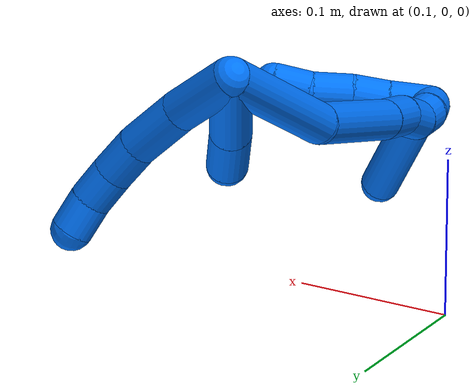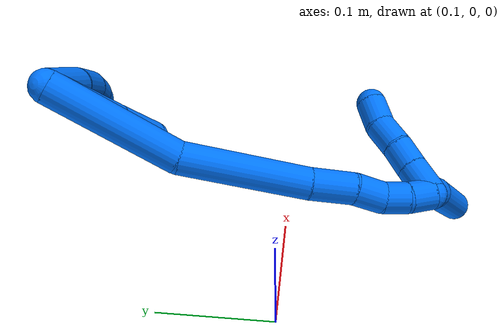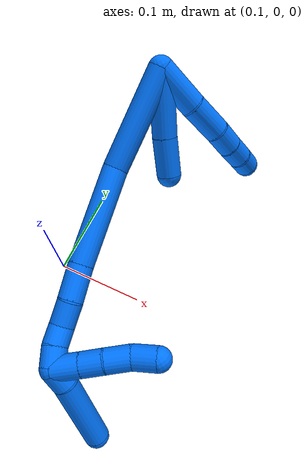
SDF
<sdf version="1.7">
 <world name="default">
  <model name="14">
   <static>0</static>
   <link name="14">
    <collision name="collision-cylinder-e_1_2_8">
     <pose>-0.000654 0.007675 0.021201 -0.347329 -0.028982 0.005085</pose>
     <geometry><cylinder><radius>0.0125</radius><length>0.045113</length></cylinder></geometry>
     <surface>
      <friction><ode><mu>1.16</mu><mu2>1.16</mu2><slip1>0</slip1><slip2>0</slip2></ode></friction>
      <contact><ode><kp>1e+06</kp><kd>1</kd><max_vel>0</max_vel><min_depth>0.001</min_depth></ode></contact>
     </surface>
    </collision>
    <visual name="visual-cylinder-e_1_2_8">
     <pose>-0.000654 0.007675 0.021201 -0.347329 -0.028982 0.005085</pose>
     <geometry><cylinder><radius>0.0125</radius><length>0.045113</length></cylinder></geometry>
     <material><ambient>0 0.462745 1 1</ambient></material>
    </visual>
    <collision name="collision-cylinder-e_2_8_9">
     <pose>0.000801 0.022827 0.059237 -0.417964 0.113975 -0.024197</pose>
     <geometry><cylinder><radius>0.0125</radius><length>0.037084</length></cylinder></geometry>
     <surface>
      <friction><ode><mu>1.16</mu><mu2>1.16</mu2><slip1>0</slip1><slip2>0</slip2></ode></friction>
      <contact><ode><kp>1e+06</kp><kd>1</kd><max_vel>0</max_vel><min_depth>0.001</min_depth></ode></contact>
     </surface>
    </collision>
    <visual name="visual-cylinder-e_2_8_9">
     <pose>0.000801 0.022827 0.059237 -0.417964 0.113975 -0.024197</pose>
     <geometry><cylinder><radius>0.0125</radius><length>0.037084</length></cylinder></geometry>
     <material><ambient>0 0.462745 1 1</ambient></material>
    </visual>
    <collision name="collision-cylinder-e_3_9_10">
     <pose>0.006165 0.035002 0.086782 -0.413385 0.271436 -0.057253</pose>
     <geometry><cylinder><radius>0.0125</radius><length>0.024277</length></cylinder></geometry>
     <surface>
      <friction><ode><mu>1.16</mu><mu2>1.16</mu2><slip1>0</slip1><slip2>0</slip2></ode></friction>
      <contact><ode><kp>1e+06</kp><kd>1</kd><max_vel>0</max_vel><min_depth>0.001</min_depth></ode></contact>
     </surface>
    </collision>
    <visual name="visual-cylinder-e_3_9_10">
     <pose>0.006165 0.035002 0.086782 -0.413385 0.271436 -0.057253</pose>
     <geometry><cylinder><radius>0.0125</radius><length>0.024277</length></cylinder></geometry>
     <material><ambient>0 0.462745 1 1</ambient></material>
    </visual>
    <collision name="collision-cylinder-e_4_10_11">
     <pose>0.013311 0.044351 0.106688 -0.468266 0.361088 -0.087015</pose>
     <geometry><cylinder><radius>0.0125</radius><length>0.022035</length></cylinder></geometry>
     <surface>
      <friction><ode><mu>1.16</mu><mu2>1.16</mu2><slip1>0</slip1><slip2>0</slip2></ode></friction>
      <contact><ode><kp>1e+06</kp><kd>1</kd><max_vel>0</max_vel><min_depth>0.001</min_depth></ode></contact>
     </surface>
    </collision>
    <visual name="visual-cylinder-e_4_10_11">
     <pose>0.013311 0.044351 0.106688 -0.468266 0.361088 -0.087015</pose>
     <geometry><cylinder><radius>0.0125</radius><length>0.022035</length></cylinder></geometry>
     <material><ambient>0 0.462745 1 1</ambient></material>
    </visual>
    <collision name="collision-cylinder-e_5_11_6">
     <pose>0.022774 0.053521 0.123888 -0.513934 0.544954 -0.14659</pose>
     <geometry><cylinder><radius>0.0125</radius><length>0.021491</length></cylinder></geometry>
     <surface>
      <friction><ode><mu>1.16</mu><mu2>1.16</mu2><slip1>0</slip1><slip2>0</slip2></ode></friction>
      <contact><ode><kp>1e+06</kp><kd>1</kd><max_vel>0</max_vel><min_depth>0.001</min_depth></ode></contact>
     </surface>
    </collision>
    <visual name="visual-cylinder-e_5_11_6">
     <pose>0.022774 0.053521 0.123888 -0.513934 0.544954 -0.14659</pose>
     <geometry><cylinder><radius>0.0125</radius><length>0.021491</length></cylinder></geometry>
     <material><ambient>0 0.462745 1 1</ambient></material>
    </visual>
    <collision name="collision-cylinder-e_1_2_12">
     <pose>0.003555 -0.010243 0.028762 0.342141 0.115922 0.020048</pose>
     <geometry><cylinder><radius>0.0125</radius><length>0.061475</length></cylinder></geometry>
     <surface>
      <friction><ode><mu>1.16</mu><mu2>1.16</mu2><slip1>0</slip1><slip2>0</slip2></ode></friction>
      <contact><ode><kp>1e+06</kp><kd>1</kd><max_vel>0</max_vel><min_depth>0.001</min_depth></ode></contact>
     </surface>
    </collision>
    <visual name="visual-cylinder-e_1_2_12">
     <pose>0.003555 -0.010243 0.028762 0.342141 0.115922 0.020048</pose>
     <geometry><cylinder><radius>0.0125</radius><length>0.061475</length></cylinder></geometry>
     <material><ambient>0 0.462745 1 1</ambient></material>
    </visual>
    <collision name="collision-cylinder-e_2_12_5">
     <pose>0.009148 -0.025907 0.075895 0.286898 0.10598 0.015322</pose>
     <geometry><cylinder><radius>0.0125</radius><length>0.038525</length></cylinder></geometry>
     <surface>
      <friction><ode><mu>1.16</mu><mu2>1.16</mu2><slip1>0</slip1><slip2>0</slip2></ode></friction>
      <contact><ode><kp>1e+06</kp><kd>1</kd><max_vel>0</max_vel><min_depth>0.001</min_depth></ode></contact>
     </surface>
    </collision>
    <visual name="visual-cylinder-e_2_12_5">
     <pose>0.009148 -0.025907 0.075895 0.286898 0.10598 0.015322</pose>
     <geometry><cylinder><radius>0.0125</radius><length>0.038525</length></cylinder></geometry>
     <material><ambient>0 0.462745 1 1</ambient></material>
    </visual>
    <collision name="collision-cylinder-e_1_2_13">
     <pose>0.001833 -0.039683 0.03062 0.913604 0.036558 0.017969</pose>
     <geometry><cylinder><radius>0.0125</radius><length>0.100312</length></cylinder></geometry>
     <surface>
      <friction><ode><mu>1.16</mu><mu2>1.16</mu2><slip1>0</slip1><slip2>0</slip2></ode></friction>
      <contact><ode><kp>1e+06</kp><kd>1</kd><max_vel>0</max_vel><min_depth>0.001</min_depth></ode></contact>
     </surface>
    </collision>
    <visual name="visual-cylinder-e_1_2_13">
     <pose>0.001833 -0.039683 0.03062 0.913604 0.036558 0.017969</pose>
     <geometry><cylinder><radius>0.0125</radius><length>0.100312</length></cylinder></geometry>
     <material><ambient>0 0.462745 1 1</ambient></material>
    </visual>
    <collision name="collision-cylinder-e_2_13_14">
     <pose>-0.009633 -0.116727 0.090693 0.903209 -0.272591 -0.132845</pose>
     <geometry><cylinder><radius>0.0125</radius><length>0.098799</length></cylinder></geometry>
     <surface>
      <friction><ode><mu>1.16</mu><mu2>1.16</mu2><slip1>0</slip1><slip2>0</slip2></ode></friction>
      <contact><ode><kp>1e+06</kp><kd>1</kd><max_vel>0</max_vel><min_depth>0.001</min_depth></ode></contact>
     </surface>
    </collision>
    <visual name="visual-cylinder-e_2_13_14">
     <pose>-0.009633 -0.116727 0.090693 0.903209 -0.272591 -0.132845</pose>
     <geometry><cylinder><radius>0.0125</radius><length>0.098799</length></cylinder></geometry>
     <material><ambient>0 0.462745 1 1</ambient></material>
    </visual>
    <collision name="collision-cylinder-e_3_14_15">
     <pose>-0.028912 -0.16672 0.130961 0.862738 -0.345189 -0.160137</pose>
     <geometry><cylinder><radius>0.0125</radius><length>0.035342</length></cylinder></geometry>
     <surface>
      <friction><ode><mu>1.16</mu><mu2>1.16</mu2><slip1>0</slip1><slip2>0</slip2></ode></friction>
      <contact><ode><kp>1e+06</kp><kd>1</kd><max_vel>0</max_vel><min_depth>0.001</min_depth></ode></contact>
     </surface>
    </collision>
    <visual name="visual-cylinder-e_3_14_15">
     <pose>-0.028912 -0.16672 0.130961 0.862738 -0.345189 -0.160137</pose>
     <geometry><cylinder><radius>0.0125</radius><length>0.035342</length></cylinder></geometry>
     <material><ambient>0 0.462745 1 1</ambient></material>
    </visual>
    <collision name="collision-cylinder-e_4_15_16">
     <pose>-0.036803 -0.188669 0.149926 0.852063 -0.153152 -0.069613</pose>
     <geometry><cylinder><radius>0.0125</radius><length>0.025051</length></cylinder></geometry>
     <surface>
      <friction><ode><mu>1.16</mu><mu2>1.16</mu2><slip1>0</slip1><slip2>0</slip2></ode></friction>
      <contact><ode><kp>1e+06</kp><kd>1</kd><max_vel>0</max_vel><min_depth>0.001</min_depth></ode></contact>
     </surface>
    </collision>
    <visual name="visual-cylinder-e_4_15_16">
     <pose>-0.036803 -0.188669 0.149926 0.852063 -0.153152 -0.069613</pose>
     <geometry><cylinder><radius>0.0125</radius><length>0.025051</length></cylinder></geometry>
     <material><ambient>0 0.462745 1 1</ambient></material>
    </visual>
    <collision name="collision-cylinder-e_5_16_17">
     <pose>-0.04334 -0.205196 0.163242 0.949234 -0.480768 -0.250564</pose>
     <geometry><cylinder><radius>0.0125</radius><length>0.020007</length></cylinder></geometry>
     <surface>
      <friction><ode><mu>1.16</mu><mu2>1.16</mu2><slip1>0</slip1><slip2>0</slip2></ode></friction>
      <contact><ode><kp>1e+06</kp><kd>1</kd><max_vel>0</max_vel><min_depth>0.001</min_depth></ode></contact>
     </surface>
    </collision>
    <visual name="visual-cylinder-e_5_16_17">
     <pose>-0.04334 -0.205196 0.163242 0.949234 -0.480768 -0.250564</pose>
     <geometry><cylinder><radius>0.0125</radius><length>0.020007</length></cylinder></geometry>
     <material><ambient>0 0.462745 1 1</ambient></material>
    </visual>
    <collision name="collision-cylinder-e_6_17_1">
     <pose>-0.053373 -0.217977 0.175092 0.694632 -0.555997 -0.205885</pose>
     <geometry><cylinder><radius>0.0125</radius><length>0.020489</length></cylinder></geometry>
     <surface>
      <friction><ode><mu>1.16</mu><mu2>1.16</mu2><slip1>0</slip1><slip2>0</slip2></ode></friction>
      <contact><ode><kp>1e+06</kp><kd>1</kd><max_vel>0</max_vel><min_depth>0.001</min_depth></ode></contact>
     </surface>
    </collision>
    <visual name="visual-cylinder-e_6_17_1">
     <pose>-0.053373 -0.217977 0.175092 0.694632 -0.555997 -0.205885</pose>
     <geometry><cylinder><radius>0.0125</radius><length>0.020489</length></cylinder></geometry>
     <material><ambient>0 0.462745 1 1</ambient></material>
    </visual>
    <collision name="collision-cylinder-e_1_1_18">
     <pose>-0.063118 -0.211084 0.185147 -1.30666 -0.324204 0.249071</pose>
     <geometry><cylinder><radius>0.0125</radius><length>0.027239</length></cylinder></geometry>
     <surface>
      <friction><ode><mu>1.16</mu><mu2>1.16</mu2><slip1>0</slip1><slip2>0</slip2></ode></friction>
      <contact><ode><kp>1e+06</kp><kd>1</kd><max_vel>0</max_vel><min_depth>0.001</min_depth></ode></contact>
     </surface>
    </collision>
    <visual name="visual-cylinder-e_1_1_18">
     <pose>-0.063118 -0.211084 0.185147 -1.30666 -0.324204 0.249071</pose>
     <geometry><cylinder><radius>0.0125</radius><length>0.027239</length></cylinder></geometry>
     <material><ambient>0 0.462745 1 1</ambient></material>
    </visual>
    <collision name="collision-cylinder-e_2_18_19">
     <pose>-0.071492 -0.188221 0.190803 -1.35452 -0.362165 0.292356</pose>
     <geometry><cylinder><radius>0.0125</radius><length>0.022776</length></cylinder></geometry>
     <surface>
      <friction><ode><mu>1.16</mu><mu2>1.16</mu2><slip1>0</slip1><slip2>0</slip2></ode></friction>
      <contact><ode><kp>1e+06</kp><kd>1</kd><max_vel>0</max_vel><min_depth>0.001</min_depth></ode></contact>
     </surface>
    </collision>
    <visual name="visual-cylinder-e_2_18_19">
     <pose>-0.071492 -0.188221 0.190803 -1.35452 -0.362165 0.292356</pose>
     <geometry><cylinder><radius>0.0125</radius><length>0.022776</length></cylinder></geometry>
     <material><ambient>0 0.462745 1 1</ambient></material>
    </visual>
    <collision name="collision-cylinder-e_3_19_20">
     <pose>-0.07882 -0.166096 0.196637 -1.2769 -0.262697 0.195461</pose>
     <geometry><cylinder><radius>0.0125</radius><length>0.025368</length></cylinder></geometry>
     <surface>
      <friction><ode><mu>1.16</mu><mu2>1.16</mu2><slip1>0</slip1><slip2>0</slip2></ode></friction>
      <contact><ode><kp>1e+06</kp><kd>1</kd><max_vel>0</max_vel><min_depth>0.001</min_depth></ode></contact>
     </surface>
    </collision>
    <visual name="visual-cylinder-e_3_19_20">
     <pose>-0.07882 -0.166096 0.196637 -1.2769 -0.262697 0.195461</pose>
     <geometry><cylinder><radius>0.0125</radius><length>0.025368</length></cylinder></geometry>
     <material><ambient>0 0.462745 1 1</ambient></material>
    </visual>
    <collision name="collision-cylinder-e_4_20_4">
     <pose>-0.088055 -0.144458 0.204417 -1.16738 -0.503743 0.336702</pose>
     <geometry><cylinder><radius>0.0125</radius><length>0.024616</length></cylinder></geometry>
     <surface>
      <friction><ode><mu>1.16</mu><mu2>1.16</mu2><slip1>0</slip1><slip2>0</slip2></ode></friction>
      <contact><ode><kp>1e+06</kp><kd>1</kd><max_vel>0</max_vel><min_depth>0.001</min_depth></ode></contact>
     </surface>
    </collision>
    <visual name="visual-cylinder-e_4_20_4">
     <pose>-0.088055 -0.144458 0.204417 -1.16738 -0.503743 0.336702</pose>
     <geometry><cylinder><radius>0.0125</radius><length>0.024616</length></cylinder></geometry>
     <material><ambient>0 0.462745 1 1</ambient></material>
    </visual>
    <collision name="collision-cylinder-e_1_1_21">
     <pose>-0.059078 -0.222763 0.192088 -0.075842 -0.028878 0.001096</pose>
     <geometry><cylinder><radius>0.0125</radius><length>0.02069</length></cylinder></geometry>
     <surface>
      <friction><ode><mu>1.16</mu><mu2>1.16</mu2><slip1>0</slip1><slip2>0</slip2></ode></friction>
      <contact><ode><kp>1e+06</kp><kd>1</kd><max_vel>0</max_vel><min_depth>0.001</min_depth></ode></contact>
     </surface>
    </collision>
    <visual name="visual-cylinder-e_1_1_21">
     <pose>-0.059078 -0.222763 0.192088 -0.075842 -0.028878 0.001096</pose>
     <geometry><cylinder><radius>0.0125</radius><length>0.02069</length></cylinder></geometry>
     <material><ambient>0 0.462745 1 1</ambient></material>
    </visual>
    <collision name="collision-cylinder-e_2_21_3">
     <pose>-0.055344 -0.225393 0.241701 0.08663 0.101878 0.004419</pose>
     <geometry><cylinder><radius>0.0125</radius><length>0.07931</length></cylinder></geometry>
     <surface>
      <friction><ode><mu>1.16</mu><mu2>1.16</mu2><slip1>0</slip1><slip2>0</slip2></ode></friction>
      <contact><ode><kp>1e+06</kp><kd>1</kd><max_vel>0</max_vel><min_depth>0.001</min_depth></ode></contact>
     </surface>
    </collision>
    <visual name="visual-cylinder-e_2_21_3">
     <pose>-0.055344 -0.225393 0.241701 0.08663 0.101878 0.004419</pose>
     <geometry><cylinder><radius>0.0125</radius><length>0.07931</length></cylinder></geometry>
     <material><ambient>0 0.462745 1 1</ambient></material>
    </visual>
    <collision name="collision-sphere-3">
     <pose>-0.051311 -0.228806 0.281002 0 -0 0</pose>
     <geometry><sphere><radius>0.0125</radius></sphere></geometry>
     <surface>
      <friction><ode><mu>1.16</mu><mu2>1.16</mu2><slip1>0</slip1><slip2>0</slip2></ode></friction>
      <contact><ode><kp>1e+06</kp><kd>1</kd><max_vel>0</max_vel><min_depth>0.001</min_depth></ode></contact>
     </surface>
    </collision>
    <visual name="visual-sphere-3">
     <pose>-0.051311 -0.228806 0.281002 0 -0 0</pose>
     <geometry><sphere><radius>0.0125</radius></sphere></geometry>
     <material><ambient>0 0.462745 1 1</ambient></material>
    </visual>
    <collision name="collision-sphere-21">
     <pose>-0.059377 -0.221979 0.202399 0 -0 0</pose>
     <geometry><sphere><radius>0.0125</radius></sphere></geometry>
     <surface>
      <friction><ode><mu>1.16</mu><mu2>1.16</mu2><slip1>0</slip1><slip2>0</slip2></ode></friction>
      <contact><ode><kp>1e+06</kp><kd>1</kd><max_vel>0</max_vel><min_depth>0.001</min_depth></ode></contact>
     </surface>
    </collision>
    <visual name="visual-sphere-21">
     <pose>-0.059377 -0.221979 0.202399 0 -0 0</pose>
     <geometry><sphere><radius>0.0125</radius></sphere></geometry>
     <material><ambient>0 0.462745 1 1</ambient></material>
    </visual>
    <collision name="collision-sphere-4">
     <pose>-0.093997 -0.134544 0.208648 0 -0 0</pose>
     <geometry><sphere><radius>0.0125</radius></sphere></geometry>
     <surface>
      <friction><ode><mu>1.16</mu><mu2>1.16</mu2><slip1>0</slip1><slip2>0</slip2></ode></friction>
      <contact><ode><kp>1e+06</kp><kd>1</kd><max_vel>0</max_vel><min_depth>0.001</min_depth></ode></contact>
     </surface>
    </collision>
    <visual name="visual-sphere-4">
     <pose>-0.093997 -0.134544 0.208648 0 -0 0</pose>
     <geometry><sphere><radius>0.0125</radius></sphere></geometry>
     <material><ambient>0 0.462745 1 1</ambient></material>
    </visual>
    <collision name="collision-sphere-20">
     <pose>-0.082114 -0.154372 0.200185 0 -0 0</pose>
     <geometry><sphere><radius>0.0125</radius></sphere></geometry>
     <surface>
      <friction><ode><mu>1.16</mu><mu2>1.16</mu2><slip1>0</slip1><slip2>0</slip2></ode></friction>
      <contact><ode><kp>1e+06</kp><kd>1</kd><max_vel>0</max_vel><min_depth>0.001</min_depth></ode></contact>
     </surface>
    </collision>
    <visual name="visual-sphere-20">
     <pose>-0.082114 -0.154372 0.200185 0 -0 0</pose>
     <geometry><sphere><radius>0.0125</radius></sphere></geometry>
     <material><ambient>0 0.462745 1 1</ambient></material>
    </visual>
    <collision name="collision-sphere-6">
     <pose>0.028345 0.058038 0.13189 0 -0 0</pose>
     <geometry><sphere><radius>0.0125</radius></sphere></geometry>
     <surface>
      <friction><ode><mu>1.16</mu><mu2>1.16</mu2><slip1>0</slip1><slip2>0</slip2></ode></friction>
      <contact><ode><kp>1e+06</kp><kd>1</kd><max_vel>0</max_vel><min_depth>0.001</min_depth></ode></contact>
     </surface>
    </collision>
    <visual name="visual-sphere-6">
     <pose>0.028345 0.058038 0.13189 0 -0 0</pose>
     <geometry><sphere><radius>0.0125</radius></sphere></geometry>
     <material><ambient>0 0.462745 1 1</ambient></material>
    </visual>
    <collision name="collision-sphere-11">
     <pose>0.017204 0.049003 0.115886 0 -0 0</pose>
     <geometry><sphere><radius>0.0125</radius></sphere></geometry>
     <surface>
      <friction><ode><mu>1.16</mu><mu2>1.16</mu2><slip1>0</slip1><slip2>0</slip2></ode></friction>
      <contact><ode><kp>1e+06</kp><kd>1</kd><max_vel>0</max_vel><min_depth>0.001</min_depth></ode></contact>
     </surface>
    </collision>
    <visual name="visual-sphere-11">
     <pose>0.017204 0.049003 0.115886 0 -0 0</pose>
     <geometry><sphere><radius>0.0125</radius></sphere></geometry>
     <material><ambient>0 0.462745 1 1</ambient></material>
    </visual>
    <collision name="collision-sphere-10">
     <pose>0.009419 0.039699 0.097491 0 -0 0</pose>
     <geometry><sphere><radius>0.0125</radius></sphere></geometry>
     <surface>
      <friction><ode><mu>1.16</mu><mu2>1.16</mu2><slip1>0</slip1><slip2>0</slip2></ode></friction>
      <contact><ode><kp>1e+06</kp><kd>1</kd><max_vel>0</max_vel><min_depth>0.001</min_depth></ode></contact>
     </surface>
    </collision>
    <visual name="visual-sphere-10">
     <pose>0.009419 0.039699 0.097491 0 -0 0</pose>
     <geometry><sphere><radius>0.0125</radius></sphere></geometry>
     <material><ambient>0 0.462745 1 1</ambient></material>
    </visual>
    <collision name="collision-sphere-9">
     <pose>0.00291 0.030304 0.076073 0 -0 0</pose>
     <geometry><sphere><radius>0.0125</radius></sphere></geometry>
     <surface>
      <friction><ode><mu>1.16</mu><mu2>1.16</mu2><slip1>0</slip1><slip2>0</slip2></ode></friction>
      <contact><ode><kp>1e+06</kp><kd>1</kd><max_vel>0</max_vel><min_depth>0.001</min_depth></ode></contact>
     </surface>
    </collision>
    <visual name="visual-sphere-9">
     <pose>0.00291 0.030304 0.076073 0 -0 0</pose>
     <geometry><sphere><radius>0.0125</radius></sphere></geometry>
     <material><ambient>0 0.462745 1 1</ambient></material>
    </visual>
    <collision name="collision-sphere-2">
     <geometry><sphere><radius>0.0125</radius></sphere></geometry>
     <surface>
      <friction><ode><mu>1.16</mu><mu2>1.16</mu2><slip1>0</slip1><slip2>0</slip2></ode></friction>
      <contact><ode><kp>1e+06</kp><kd>1</kd><max_vel>0</max_vel><min_depth>0.001</min_depth></ode></contact>
     </surface>
    </collision>
    <visual name="visual-sphere-2">
     <geometry><sphere><radius>0.0125</radius></sphere></geometry>
     <material><ambient>0 0.462745 1 1</ambient></material>
    </visual>
    <collision name="collision-sphere-19">
     <pose>-0.075526 -0.177819 0.193088 0 -0 0</pose>
     <geometry><sphere><radius>0.0125</radius></sphere></geometry>
     <surface>
      <friction><ode><mu>1.16</mu><mu2>1.16</mu2><slip1>0</slip1><slip2>0</slip2></ode></friction>
      <contact><ode><kp>1e+06</kp><kd>1</kd><max_vel>0</max_vel><min_depth>0.001</min_depth></ode></contact>
     </surface>
    </collision>
    <visual name="visual-sphere-19">
     <pose>-0.075526 -0.177819 0.193088 0 -0 0</pose>
     <geometry><sphere><radius>0.0125</radius></sphere></geometry>
     <material><ambient>0 0.462745 1 1</ambient></material>
    </visual>
    <collision name="collision-sphere-8">
     <pose>-0.001307 0.01535 0.042402 0 -0 0</pose>
     <geometry><sphere><radius>0.0125</radius></sphere></geometry>
     <surface>
      <friction><ode><mu>1.16</mu><mu2>1.16</mu2><slip1>0</slip1><slip2>0</slip2></ode></friction>
      <contact><ode><kp>1e+06</kp><kd>1</kd><max_vel>0</max_vel><min_depth>0.001</min_depth></ode></contact>
     </surface>
    </collision>
    <visual name="visual-sphere-8">
     <pose>-0.001307 0.01535 0.042402 0 -0 0</pose>
     <geometry><sphere><radius>0.0125</radius></sphere></geometry>
     <material><ambient>0 0.462745 1 1</ambient></material>
    </visual>
    <collision name="collision-sphere-12">
     <pose>0.00711 -0.020487 0.057523 0 -0 0</pose>
     <geometry><sphere><radius>0.0125</radius></sphere></geometry>
     <surface>
      <friction><ode><mu>1.16</mu><mu2>1.16</mu2><slip1>0</slip1><slip2>0</slip2></ode></friction>
      <contact><ode><kp>1e+06</kp><kd>1</kd><max_vel>0</max_vel><min_depth>0.001</min_depth></ode></contact>
     </surface>
    </collision>
    <visual name="visual-sphere-12">
     <pose>0.00711 -0.020487 0.057523 0 -0 0</pose>
     <geometry><sphere><radius>0.0125</radius></sphere></geometry>
     <material><ambient>0 0.462745 1 1</ambient></material>
    </visual>
    <collision name="collision-sphere-5">
     <pose>0.011186 -0.031327 0.094266 0 -0 0</pose>
     <geometry><sphere><radius>0.0125</radius></sphere></geometry>
     <surface>
      <friction><ode><mu>1.16</mu><mu2>1.16</mu2><slip1>0</slip1><slip2>0</slip2></ode></friction>
      <contact><ode><kp>1e+06</kp><kd>1</kd><max_vel>0</max_vel><min_depth>0.001</min_depth></ode></contact>
     </surface>
    </collision>
    <visual name="visual-sphere-5">
     <pose>0.011186 -0.031327 0.094266 0 -0 0</pose>
     <geometry><sphere><radius>0.0125</radius></sphere></geometry>
     <material><ambient>0 0.462745 1 1</ambient></material>
    </visual>
    <collision name="collision-sphere-13">
     <pose>0.003666 -0.079365 0.061239 0 -0 0</pose>
     <geometry><sphere><radius>0.0125</radius></sphere></geometry>
     <surface>
      <friction><ode><mu>1.16</mu><mu2>1.16</mu2><slip1>0</slip1><slip2>0</slip2></ode></friction>
      <contact><ode><kp>1e+06</kp><kd>1</kd><max_vel>0</max_vel><min_depth>0.001</min_depth></ode></contact>
     </surface>
    </collision>
    <visual name="visual-sphere-13">
     <pose>0.003666 -0.079365 0.061239 0 -0 0</pose>
     <geometry><sphere><radius>0.0125</radius></sphere></geometry>
     <material><ambient>0 0.462745 1 1</ambient></material>
    </visual>
    <collision name="collision-sphere-14">
     <pose>-0.022933 -0.154089 0.120147 0 -0 0</pose>
     <geometry><sphere><radius>0.0125</radius></sphere></geometry>
     <surface>
      <friction><ode><mu>1.16</mu><mu2>1.16</mu2><slip1>0</slip1><slip2>0</slip2></ode></friction>
      <contact><ode><kp>1e+06</kp><kd>1</kd><max_vel>0</max_vel><min_depth>0.001</min_depth></ode></contact>
     </surface>
    </collision>
    <visual name="visual-sphere-14">
     <pose>-0.022933 -0.154089 0.120147 0 -0 0</pose>
     <geometry><sphere><radius>0.0125</radius></sphere></geometry>
     <material><ambient>0 0.462745 1 1</ambient></material>
    </visual>
    <collision name="collision-sphere-15">
     <pose>-0.034892 -0.179352 0.141776 0 -0 0</pose>
     <geometry><sphere><radius>0.0125</radius></sphere></geometry>
     <surface>
      <friction><ode><mu>1.16</mu><mu2>1.16</mu2><slip1>0</slip1><slip2>0</slip2></ode></friction>
      <contact><ode><kp>1e+06</kp><kd>1</kd><max_vel>0</max_vel><min_depth>0.001</min_depth></ode></contact>
     </surface>
    </collision>
    <visual name="visual-sphere-15">
     <pose>-0.034892 -0.179352 0.141776 0 -0 0</pose>
     <geometry><sphere><radius>0.0125</radius></sphere></geometry>
     <material><ambient>0 0.462745 1 1</ambient></material>
    </visual>
    <collision name="collision-sphere-16">
     <pose>-0.038713 -0.197986 0.158077 0 -0 0</pose>
     <geometry><sphere><radius>0.0125</radius></sphere></geometry>
     <surface>
      <friction><ode><mu>1.16</mu><mu2>1.16</mu2><slip1>0</slip1><slip2>0</slip2></ode></friction>
      <contact><ode><kp>1e+06</kp><kd>1</kd><max_vel>0</max_vel><min_depth>0.001</min_depth></ode></contact>
     </surface>
    </collision>
    <visual name="visual-sphere-16">
     <pose>-0.038713 -0.197986 0.158077 0 -0 0</pose>
     <geometry><sphere><radius>0.0125</radius></sphere></geometry>
     <material><ambient>0 0.462745 1 1</ambient></material>
    </visual>
    <collision name="collision-sphere-17">
     <pose>-0.047966 -0.212407 0.168407 0 -0 0</pose>
     <geometry><sphere><radius>0.0125</radius></sphere></geometry>
     <surface>
      <friction><ode><mu>1.16</mu><mu2>1.16</mu2><slip1>0</slip1><slip2>0</slip2></ode></friction>
      <contact><ode><kp>1e+06</kp><kd>1</kd><max_vel>0</max_vel><min_depth>0.001</min_depth></ode></contact>
     </surface>
    </collision>
    <visual name="visual-sphere-17">
     <pose>-0.047966 -0.212407 0.168407 0 -0 0</pose>
     <geometry><sphere><radius>0.0125</radius></sphere></geometry>
     <material><ambient>0 0.462745 1 1</ambient></material>
    </visual>
    <collision name="collision-sphere-1">
     <pose>-0.05878 -0.223547 0.181777 0 -0 0</pose>
     <geometry><sphere><radius>0.0125</radius></sphere></geometry>
     <surface>
      <friction><ode><mu>1.16</mu><mu2>1.16</mu2><slip1>0</slip1><slip2>0</slip2></ode></friction>
      <contact><ode><kp>1e+06</kp><kd>1</kd><max_vel>0</max_vel><min_depth>0.001</min_depth></ode></contact>
     </surface>
    </collision>
    <visual name="visual-sphere-1">
     <pose>-0.05878 -0.223547 0.181777 0 -0 0</pose>
     <geometry><sphere><radius>0.0125</radius></sphere></geometry>
     <material><ambient>0 0.462745 1 1</ambient></material>
    </visual>
    <collision name="collision-sphere-18">
     <pose>-0.067457 -0.198622 0.188518 0 -0 0</pose>
     <geometry><sphere><radius>0.0125</radius></sphere></geometry>
     <surface>
      <friction><ode><mu>1.16</mu><mu2>1.16</mu2><slip1>0</slip1><slip2>0</slip2></ode></friction>
      <contact><ode><kp>1e+06</kp><kd>1</kd><max_vel>0</max_vel><min_depth>0.001</min_depth></ode></contact>
     </surface>
    </collision>
    <visual name="visual-sphere-18">
     <pose>-0.067457 -0.198622 0.188518 0 -0 0</pose>
     <geometry><sphere><radius>0.0125</radius></sphere></geometry>
     <material><ambient>0 0.462745 1 1</ambient></material>
    </visual>
    <inertial>
     <pose>-0.021727 -0.096603 0.11305 0 -0 0</pose>
     <mass>0.75</mass>
     <inertia>
      <ixx>0.000268</ixx>
      <ixy>0</ixy>
      <ixz>0</ixz>
      <iyy>0.000193</iyy>
      <iyz>0</iyz>
      <izz>0.000195</izz>
     </inertia>
    </inertial>
   </link>
   <pose>0.15486 0.159538 0.189514 3.01705 0.796739 2.44926</pose>
  </model>
 </world>
</sdf>
